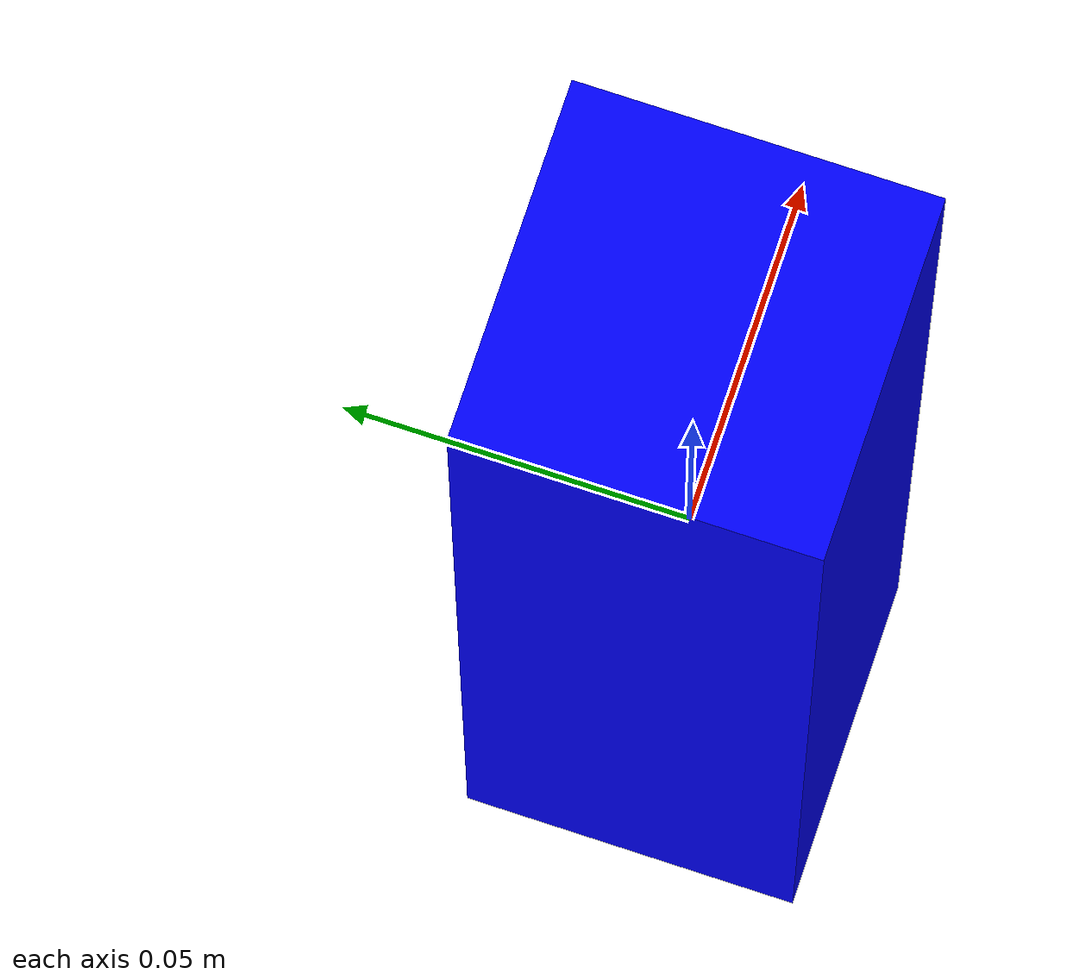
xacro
<?xml version="1.0"?>
<robot xmlns:xacro="https://www.ros.org/wiki/xacro" name="camera">
    <link name="base_link">
        <visual>
            <geometry>
                <box size="0.05 0.05 0.2"/>
            </geometry>
            <material name="blue">
                <color rgba="0 0 1 1"/>
            </material>
        </visual>
        <collision>
            <geometry>
                <box size="0.05 0.05 0.2"/>
            </geometry>
        </collision>
        <inertial>
            <origin xyz="0 0 0" />
            <mass value="1" />
            <inertia ixx="1" ixy="0.0"  ixz="0.0"
                                iyy="1" iyz="0.0"
                                           izz="1" />
        </inertial>
    </link>
    <link name="arm_link_1">
        <visual>
            <geometry>
                <box size="0.05 0.05 0.2"/>
            </geometry>
            <material name="blue">
                <color rgba="0 1 1 1"/>
            </material>
        </visual>
        <collision>
            <geometry>
                <box size="0.05 0.05 0.2"/>
            </geometry>
        </collision>
        <inertial>
            <origin xyz="0 0 0" />
            <mass value="1" />
            <inertia ixx="1" ixy="0.0"  ixz="0.0"
                                iyy="1" iyz="0.0"
                                           izz="1" />
        </inertial>
    </link>

    <link name="arm_link_2">
        <visual>
            <geometry>
                <box size="0.05 0.05 0.2"/>
            </geometry>
            <material name="blue">
                <color rgba="0 1 0 1"/>
            </material>
        </visual>
        <collision>
            <geometry>
                <box size="0.05 0.05 0.2"/>
            </geometry>
        </collision>
        <inertial>
            <origin xyz="0 0 0" />
            <mass value="1" />
            <inertia ixx="1" ixy="0.0"  ixz="0.0"
                                iyy="1" iyz="0.0"
                                           izz="1" />
        </inertial>
    </link>
    <link name="arm_link_3">
        <visual>
            <geometry>
                <box size="0.05 0.05 0.2"/>
            </geometry>
            <material name="blue">
                <color rgba="1 1 0 1"/>
            </material>
        </visual>
        <collision>
            <geometry>
                <box size="0.05 0.05 0.2"/>
            </geometry>
        </collision>
        <inertial>
            <origin xyz="0 0 0" />
            <mass value="1" />
            <inertia ixx="1" ixy="0.0"  ixz="0.0"
                                iyy="1" iyz="0.0"
                                           izz="1" />
        </inertial>
    </link>
    <link name="arm_link_4">
        <visual>
            <geometry>
                <box size="0.05 0.05 0.2"/>
            </geometry>
            <material name="blue">
                <color rgba="1 0 0 1"/>
            </material>
        </visual>
        <collision>
            <geometry>
                <box size="0.05 0.05 0.2"/>
            </geometry>
        </collision>
        <inertial>
            <origin xyz="0 0 0" />
            <mass value="1" />
            <inertia ixx="1" ixy="0.0"  ixz="0.0"
                                iyy="1" iyz="0.0"
                                           izz="1" />
        </inertial>
    </link>
    <joint name="arm_joint_1" type="revolute">
        <origin xyz="0 0 0" rpy="0 0 0"/>
        <parent link="base_link"/>
        <child link="arm_link_1"/>
        <limit effort="10" velocity="10" lower="-1.57" upper="1.57"/>
    </joint>
    <joint name="arm_joint_2" type="revolute">
        <origin xyz="0 0 0" rpy="0 0 0"/>
        <parent link="arm_link_1"/>
        <child link="arm_link_2"/>
        <limit effort="10" velocity="10" lower="-1.57" upper="1.57"/>
    </joint>
    <joint name="arm_joint_3" type="revolute">
        <origin xyz="0 0 0" rpy="0 0 0"/>
        <parent link="arm_link_2"/>
        <child link="arm_link_3"/>
        <limit effort="10" velocity="10" lower="-1.57" upper="1.57"/>
    </joint>
    <joint name="arm_joint_4" type="revolute">
        <origin xyz="0 0 0" rpy="0 0 0"/>
        <parent link="arm_link_3"/>
        <child link="arm_link_4"/>
        <limit effort="10" velocity="10" lower="-1.57" upper="1.57"/>
    </joint>
</robot>
